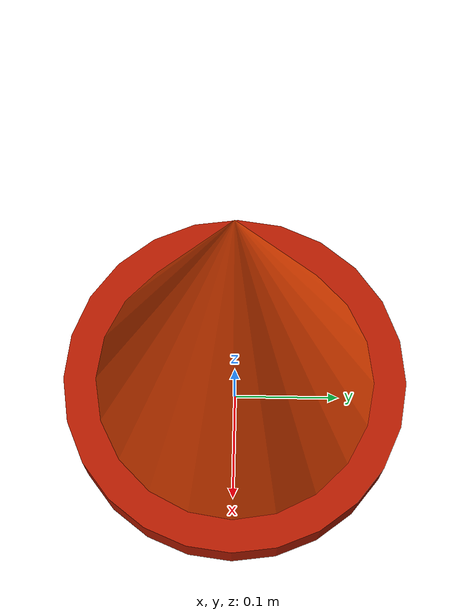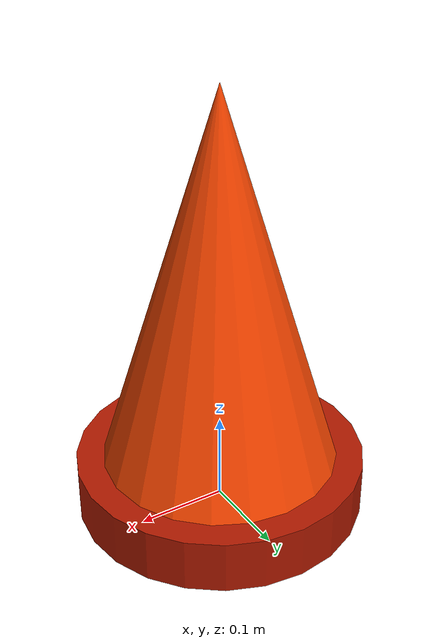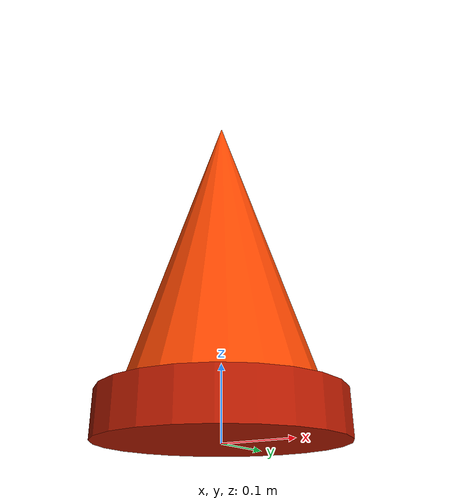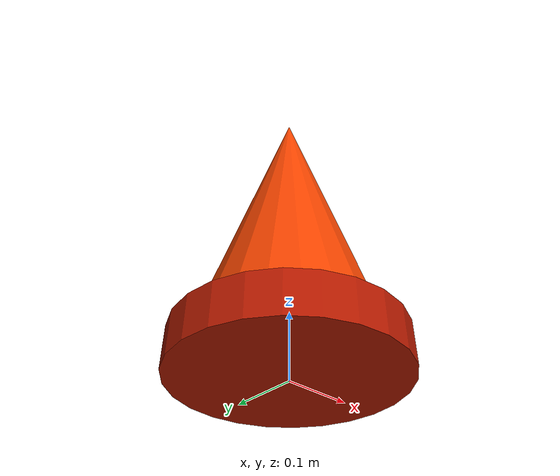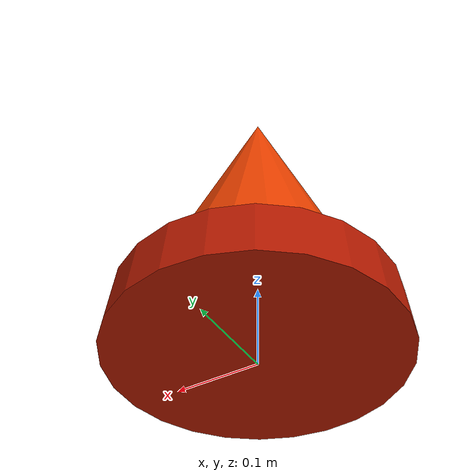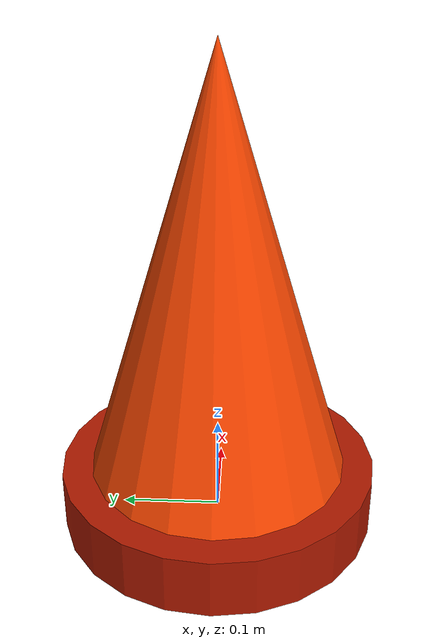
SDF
<?xml version="1.0"?>
<sdf version="1.9">
  <model name="fire">
    <static>true</static>
    <link name="base_link">

      <!-- embers -->
      <visual name="embers">
        <pose>0 0 0.03 0 0 0</pose>
        <geometry><cylinder><radius>0.16</radius><length>0.06</length></cylinder></geometry>
        <material>
          <ambient>0.7 0.1 0 1</ambient><diffuse>0.7 0.1 0 1</diffuse>
          <emissive>0.75 0.12 0 1</emissive>
        </material>
      </visual>

      <!-- outer flame -->
      <visual name="flame_outer">
        <pose>0 0 0.27 0 0 0</pose>
        <geometry><cone><radius>0.13</radius><length>0.42</length></cone></geometry>
        <material>
          <ambient>1 0.28 0 1</ambient><diffuse>1 0.28 0 1</diffuse>
          <emissive>1 0.28 0 1</emissive>
        </material>
      </visual>

      <!-- inner flame -->
      <visual name="flame_inner">
        <pose>0 0 0.21 0 0 0</pose>
        <geometry><cone><radius>0.07</radius><length>0.30</length></cone></geometry>
        <material>
          <ambient>1 0.72 0.1 1</ambient><diffuse>1 0.72 0.1 1</diffuse>
          <emissive>1 0.72 0.1 1</emissive>
        </material>
      </visual>

      <!-- the whole column is an obstacle -->
      <collision name="hazard_collision">
        <pose>0 0 0.25 0 0 0</pose>
        <geometry><cylinder><radius>0.15</radius><length>0.5</length></cylinder></geometry>
      </collision>

    </link>
  </model>
</sdf>
